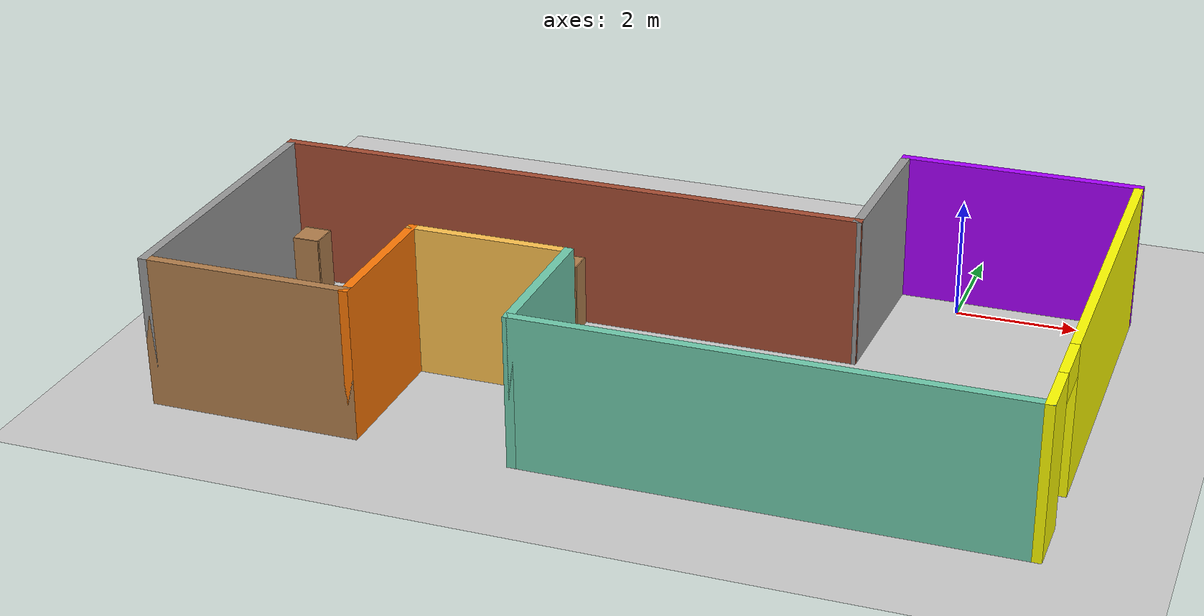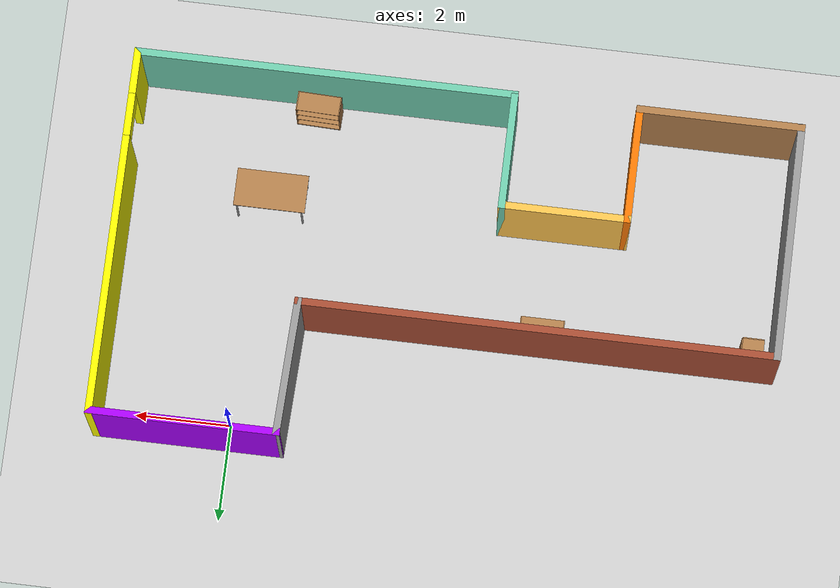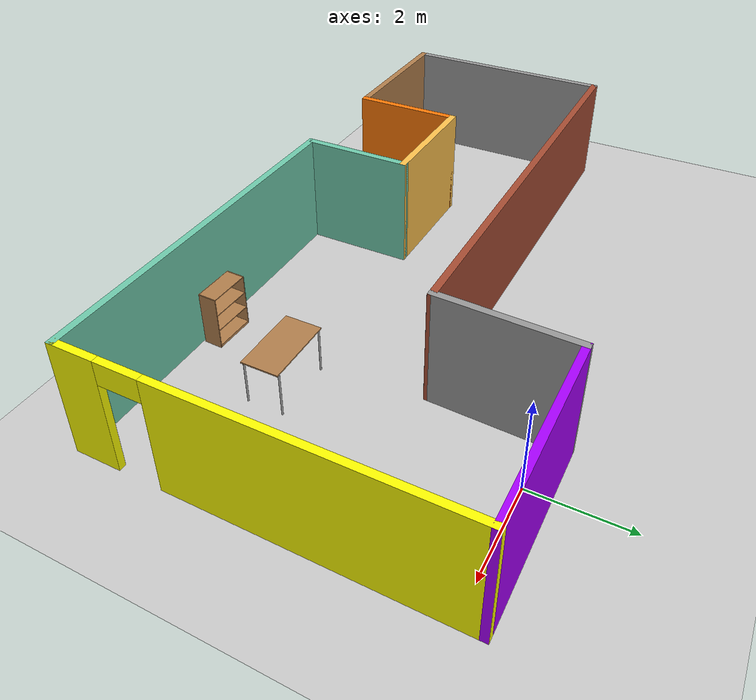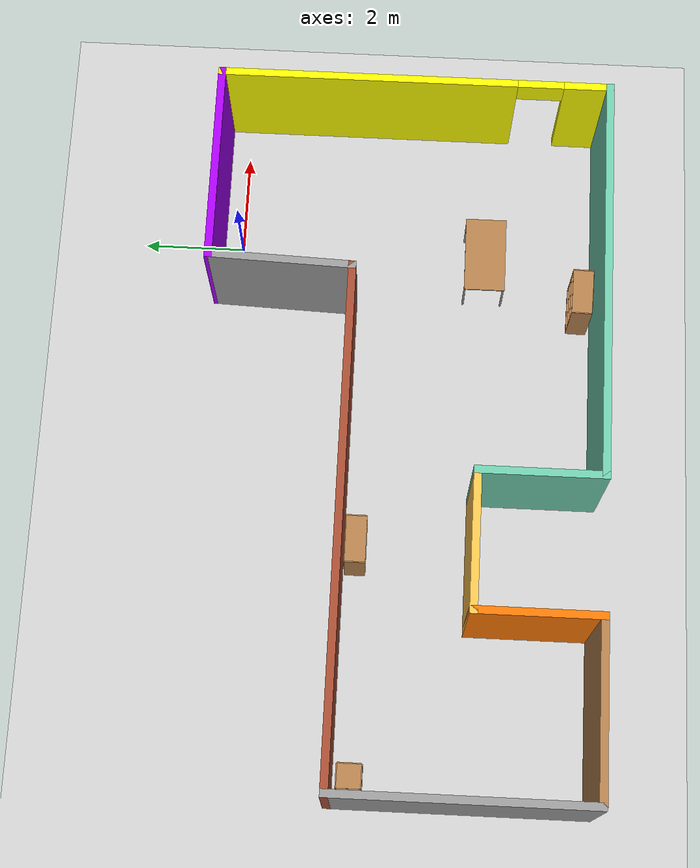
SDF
<sdf version="1.6">
 <world name="default">
  <light name="sun" type="directional">
   <pose>0 0 10 0 -0 0</pose>
   <diffuse>0.8 0.8 0.8 1</diffuse>
   <specular>0.2 0.2 0.2 1</specular>
   <attenuation>
    <range>1000</range>
    <constant>0.9</constant>
    <linear>0.01</linear>
    <quadratic>0.001</quadratic>
   </attenuation>
   <direction>-0.5 0.1 -0.9</direction>
  </light>
  <model name="ground_plane">
   <static>1</static>
   <link name="link">
    <collision name="collision">
     <geometry><plane><normal>0 0 1</normal><size>100 100</size></plane></geometry>
     <surface>
      <contact><collide_bitmask>65535</collide_bitmask></contact>
      <friction><ode><mu>100</mu><mu2>50</mu2></ode></friction>
     </surface>
    </collision>
    <visual name="visual">
     <cast_shadows>0</cast_shadows>
     <geometry><plane><normal>0 0 1</normal><size>100 100</size></plane></geometry>
     <material>
      <script><uri>file://media/materials/scripts/gazebo.material</uri><name>Gazebo/Grey</name></script>
     </material>
    </visual>
   </link>
  </model>
  <gravity>0 0 -9.8</gravity>
  <magnetic_field>6e-06 2.3e-05 -4.2e-05</magnetic_field>
  <atmosphere type="adiabatic"/>
  <physics name="default_physics" default="0" type="ode">
   <max_step_size>0.001</max_step_size>
   <real_time_factor>1</real_time_factor>
   <real_time_update_rate>1000</real_time_update_rate>
  </physics>
  <scene><ambient>0.4 0.4 0.4 1</ambient><background>0.7 0.7 0.7 1</background><shadows>1</shadows></scene>
  <spherical_coordinates>
   <surface_model>EARTH_WGS84</surface_model>
   <latitude_deg>0</latitude_deg>
   <longitude_deg>0</longitude_deg>
   <elevation>0</elevation>
   <heading_deg>0</heading_deg>
  </spherical_coordinates>
  <model name="simple_space">
   <pose>-4.15605 -3.3435 0 0 -0 0</pose>
   <link name="Wall_15">
    <collision name="Wall_15_Collision">
     <geometry><box><size>10 0.15 2.5</size></box></geometry>
     <pose>0 0 1.25 0 -0 0</pose>
    </collision>
    <visual name="Wall_15_Visual">
     <pose>0 0 1.25 0 -0 0</pose>
     <geometry><box><size>10 0.15 2.5</size></box></geometry>
     <material>
      <script><uri>file://media/materials/scripts/gazebo.material</uri><name>Gazebo/Bricks</name></script>
      <ambient>1 1 1 1</ambient>
     </material>
     <meta><layer>0</layer></meta>
    </visual>
    <pose>-1.975 1.04866 0 0 -0 3.14159</pose>
   </link>
   <link name="Wall_16">
    <collision name="Wall_16_Collision">
     <geometry><box><size>5 0.15 2.5</size></box></geometry>
     <pose>0 0 1.25 0 -0 0</pose>
    </collision>
    <visual name="Wall_16_Visual">
     <pose>0 0 1.25 0 -0 0</pose>
     <geometry><box><size>5 0.15 2.5</size></box></geometry>
     <material>
      <script><uri>file://media/materials/scripts/gazebo.material</uri><name>Gazebo/Grey</name></script>
      <ambient>1 1 1 1</ambient>
     </material>
     <meta><layer>0</layer></meta>
    </visual>
    <pose>-6.9 -1.37634 0 0 0 -1.5708</pose>
   </link>
   <link name="Wall_17">
    <collision name="Wall_17_Collision">
     <geometry><box><size>3.5 0.15 2.5</size></box></geometry>
     <pose>0 0 1.25 0 -0 0</pose>
    </collision>
    <visual name="Wall_17_Visual">
     <pose>0 0 1.25 0 -0 0</pose>
     <geometry><box><size>3.5 0.15 2.5</size></box></geometry>
     <material>
      <script><uri>file://media/materials/scripts/gazebo.material</uri><name>Gazebo/Wood</name></script>
      <ambient>1 1 1 1</ambient>
     </material>
     <meta><layer>0</layer></meta>
    </visual>
    <pose>-5.225 -3.80134 0 0 -0 0</pose>
   </link>
   <link name="Wall_18">
    <collision name="Wall_18_Collision">
     <geometry><box><size>2.5 0.15 2.5</size></box></geometry>
     <pose>0 0 1.25 0 -0 0</pose>
    </collision>
    <visual name="Wall_18_Visual">
     <pose>0 0 1.25 0 -0 0</pose>
     <geometry><box><size>2.5 0.15 2.5</size></box></geometry>
     <material>
      <script><uri>file://media/materials/scripts/gazebo.material</uri><name>Gazebo/Grey</name></script>
      <ambient>0.996078 0.47451 0.0196078 1</ambient>
     </material>
     <meta><layer>0</layer></meta>
    </visual>
    <pose>-3.55 -2.62634 0 0 -0 1.5708</pose>
   </link>
   <link name="Wall_19">
    <collision name="Wall_19_Collision">
     <geometry><box><size>2.75 0.15 2.5</size></box></geometry>
     <pose>0 0 1.25 0 -0 0</pose>
    </collision>
    <visual name="Wall_19_Visual">
     <pose>0 0 1.25 0 -0 0</pose>
     <geometry><box><size>2.75 0.15 2.5</size></box></geometry>
     <material>
      <script><uri>file://media/materials/scripts/gazebo.material</uri><name>Gazebo/Grey</name></script>
      <ambient>1 0.764706 0.305882 1</ambient>
     </material>
     <meta><layer>0</layer></meta>
    </visual>
    <pose>-2.25 -1.45134 0 0 -0 0</pose>
   </link>
   <link name="Wall_20">
    <collision name="Wall_20_Collision">
     <geometry><box><size>2.5 0.15 2.5</size></box></geometry>
     <pose>0 0 1.25 0 -0 0</pose>
    </collision>
    <visual name="Wall_20_Visual">
     <pose>0 0 1.25 0 -0 0</pose>
     <geometry><box><size>2.5 0.15 2.5</size></box></geometry>
     <material>
      <script><uri>file://media/materials/scripts/gazebo.material</uri><name>Gazebo/Grey</name></script>
      <ambient>0.435294 0.796078 0.67451 1</ambient>
     </material>
     <meta><layer>0</layer></meta>
    </visual>
    <pose>-0.95 -2.62634 0 0 0 -1.5708</pose>
   </link>
   <link name="Wall_22">
    <collision name="Wall_22_Collision">
     <geometry><box><size>8 0.15 2.5</size></box></geometry>
     <pose>0 0 1.25 0 -0 0</pose>
    </collision>
    <visual name="Wall_22_Visual">
     <pose>0 0 1.25 0 -0 0</pose>
     <geometry><box><size>8 0.15 2.5</size></box></geometry>
     <material>
      <script><uri>file://media/materials/scripts/gazebo.material</uri><name>Gazebo/Grey</name></script>
      <ambient>0.435294 0.796078 0.67451 1</ambient>
     </material>
     <meta><layer>0</layer></meta>
    </visual>
    <pose>2.975 -3.80134 0 0 -0 0</pose>
   </link>
   <link name="Wall_23">
    <pose>6.9 -0.001338 0 0 -0 1.5708</pose>
    <visual name="Wall_23_Visual_0">
     <pose>-3.38651 0 1.25 0 -0 0</pose>
     <geometry><box><size>0.976988 0.15 2.5</size></box></geometry>
     <material>
      <script><uri>file://media/materials/scripts/gazebo.material</uri><name>Gazebo/Grey</name></script>
      <ambient>1 1 0 1</ambient>
     </material>
     <meta><layer>0</layer></meta>
    </visual>
    <collision name="Wall_23_Collision_0">
     <geometry><box><size>0.976988 0.15 2.5</size></box></geometry>
     <pose>-3.38651 0 1.25 0 -0 0</pose>
    </collision>
    <visual name="Wall_23_Visual_1">
     <pose>0.938494 0 1.25 0 -0 0</pose>
     <geometry><box><size>5.87301 0.15 2.5</size></box></geometry>
     <material>
      <script><uri>file://media/materials/scripts/gazebo.material</uri><name>Gazebo/Grey</name></script>
      <ambient>1 1 0 1</ambient>
     </material>
     <meta><layer>0</layer></meta>
    </visual>
    <collision name="Wall_23_Collision_1">
     <geometry><box><size>5.87301 0.15 2.5</size></box></geometry>
     <pose>0.938494 0 1.25 0 -0 0</pose>
    </collision>
    <visual name="Wall_23_Visual_2">
     <pose>-2.44801 0 2.25 0 -0 0</pose>
     <geometry><box><size>0.9 0.15 0.5</size></box></geometry>
     <material>
      <script><uri>file://media/materials/scripts/gazebo.material</uri><name>Gazebo/Grey</name></script>
      <ambient>1 1 0 1</ambient>
     </material>
     <meta><layer>0</layer></meta>
    </visual>
    <collision name="Wall_23_Collision_2">
     <geometry><box><size>0.9 0.15 0.5</size></box></geometry>
     <pose>-2.44801 0 2.25 0 -0 0</pose>
    </collision>
   </link>
   <link name="Wall_24">
    <collision name="Wall_24_Collision">
     <geometry><box><size>4 0.15 2.5</size></box></geometry>
     <pose>0 0 1.25 0 -0 0</pose>
    </collision>
    <visual name="Wall_24_Visual">
     <pose>0 0 1.25 0 -0 0</pose>
     <geometry><box><size>4 0.15 2.5</size></box></geometry>
     <material>
      <script><uri>file://media/materials/scripts/gazebo.material</uri><name>Gazebo/Grey</name></script>
      <ambient>0.666667 0 1 1</ambient>
     </material>
     <meta><layer>0</layer></meta>
    </visual>
    <pose>4.975 3.79866 0 0 -0 3.14159</pose>
   </link>
   <link name="Wall_25">
    <collision name="Wall_25_Collision">
     <geometry><box><size>2.90182 0.15 2.5</size></box></geometry>
     <pose>0 0 1.25 0 -0 0</pose>
    </collision>
    <visual name="Wall_25_Visual">
     <pose>0 0 1.25 0 -0 0</pose>
     <geometry><box><size>2.90182 0.15 2.5</size></box></geometry>
     <material>
      <script><uri>file://media/materials/scripts/gazebo.material</uri><name>Gazebo/Grey</name></script>
      <ambient>0 0 0 1</ambient>
     </material>
     <meta><layer>0</layer></meta>
    </visual>
    <pose>3 2.42366 0 0 0 -1.60714</pose>
   </link>
   <static>1</static>
  </model>
  <model name="bookshelf">
   <static>1</static>
   <link name="link">
    <inertial><mass>1</mass></inertial>
    <collision name="back">
     <pose>0 0.005 0.6 0 -0 0</pose>
     <geometry><box><size>0.9 0.01 1.2</size></box></geometry>
    </collision>
    <visual name="visual1">
     <pose>0 0.005 0.6 0 -0 0</pose>
     <geometry><box><size>0.9 0.01 1.2</size></box></geometry>
     <material>
      <script><uri>file://media/materials/scripts/gazebo.material</uri><name>Gazebo/Wood</name></script>
     </material>
    </visual>
    <collision name="left_side">
     <pose>0.45 -0.195 0.6 0 -0 0</pose>
     <geometry><box><size>0.02 0.4 1.2</size></box></geometry>
    </collision>
    <visual name="visual2">
     <pose>0.45 -0.195 0.6 0 -0 0</pose>
     <geometry><box><size>0.02 0.4 1.2</size></box></geometry>
     <material>
      <script><uri>file://media/materials/scripts/gazebo.material</uri><name>Gazebo/Wood</name></script>
     </material>
    </visual>
    <collision name="right_side">
     <pose>-0.45 -0.195 0.6 0 -0 0</pose>
     <geometry><box><size>0.02 0.4 1.2</size></box></geometry>
    </collision>
    <visual name="visual3">
     <pose>-0.45 -0.195 0.6 0 -0 0</pose>
     <geometry><box><size>0.02 0.4 1.2</size></box></geometry>
     <material>
      <script><uri>file://media/materials/scripts/gazebo.material</uri><name>Gazebo/Wood</name></script>
     </material>
    </visual>
    <collision name="bottom">
     <pose>0 -0.195 0.03 0 -0 0</pose>
     <geometry><box><size>0.88 0.4 0.06</size></box></geometry>
    </collision>
    <visual name="visual4">
     <pose>0 -0.195 0.03 0 -0 0</pose>
     <geometry><box><size>0.88 0.4 0.06</size></box></geometry>
     <material>
      <script><uri>file://media/materials/scripts/gazebo.material</uri><name>Gazebo/Wood</name></script>
     </material>
    </visual>
    <collision name="top">
     <pose>0 -0.195 1.19 0 -0 0</pose>
     <geometry><box><size>0.88 0.4 0.02</size></box></geometry>
    </collision>
    <visual name="visual5">
     <pose>0 -0.195 1.19 0 -0 0</pose>
     <geometry><box><size>0.88 0.4 0.02</size></box></geometry>
     <material>
      <script><uri>file://media/materials/scripts/gazebo.material</uri><name>Gazebo/Wood</name></script>
     </material>
    </visual>
    <collision name="low_shelf">
     <pose>0 -0.195 0.43 0 -0 0</pose>
     <geometry><box><size>0.88 0.4 0.02</size></box></geometry>
    </collision>
    <visual name="visual6">
     <pose>0 -0.195 0.43 0 -0 0</pose>
     <geometry><box><size>0.88 0.4 0.02</size></box></geometry>
     <material>
      <script><uri>file://media/materials/scripts/gazebo.material</uri><name>Gazebo/Wood</name></script>
     </material>
    </visual>
    <collision name="high_shelf">
     <pose>0 -0.195 0.8 0 -0 0</pose>
     <geometry><box><size>0.88 0.4 0.02</size></box></geometry>
    </collision>
    <visual name="visual7">
     <pose>0 -0.195 0.8 0 -0 0</pose>
     <geometry><box><size>0.88 0.4 0.02</size></box></geometry>
     <material>
      <script><uri>file://media/materials/scripts/gazebo.material</uri><name>Gazebo/Wood</name></script>
     </material>
    </visual>
   </link>
   <pose>-1.04 -7.00663 0 0 -0 3.1102</pose>
  </model>
  <model name="table">
   <static>1</static>
   <link name="link">
    <collision name="surface">
     <pose>0 0 1 0 -0 0</pose>
     <geometry><box><size>1.5 0.8 0.03</size></box></geometry>
     <surface><friction><ode><mu>0.6</mu><mu2>0.6</mu2></ode></friction></surface>
    </collision>
    <visual name="visual1">
     <pose>0 0 1 0 -0 0</pose>
     <geometry><box><size>1.5 0.8 0.03</size></box></geometry>
     <material>
      <script><uri>file://media/materials/scripts/gazebo.material</uri><name>Gazebo/Wood</name></script>
     </material>
    </visual>
    <collision name="front_left_leg">
     <pose>0.68 0.38 0.5 0 -0 0</pose>
     <geometry><cylinder><radius>0.02</radius><length>1</length></cylinder></geometry>
    </collision>
    <visual name="front_left_leg">
     <pose>0.68 0.38 0.5 0 -0 0</pose>
     <geometry><cylinder><radius>0.02</radius><length>1</length></cylinder></geometry>
     <material>
      <script><uri>file://media/materials/scripts/gazebo.material</uri><name>Gazebo/Grey</name></script>
     </material>
    </visual>
    <collision name="front_right_leg">
     <pose>0.68 -0.38 0.5 0 -0 0</pose>
     <geometry><cylinder><radius>0.02</radius><length>1</length></cylinder></geometry>
    </collision>
    <visual name="front_right_leg">
     <pose>0.68 -0.38 0.5 0 -0 0</pose>
     <geometry><cylinder><radius>0.02</radius><length>1</length></cylinder></geometry>
     <material>
      <script><uri>file://media/materials/scripts/gazebo.material</uri><name>Gazebo/Grey</name></script>
     </material>
    </visual>
    <collision name="back_right_leg">
     <pose>-0.68 -0.38 0.5 0 -0 0</pose>
     <geometry><cylinder><radius>0.02</radius><length>1</length></cylinder></geometry>
    </collision>
    <visual name="back_right_leg">
     <pose>-0.68 -0.38 0.5 0 -0 0</pose>
     <geometry><cylinder><radius>0.02</radius><length>1</length></cylinder></geometry>
     <material>
      <script><uri>file://media/materials/scripts/gazebo.material</uri><name>Gazebo/Grey</name></script>
     </material>
    </visual>
    <collision name="back_left_leg">
     <pose>-0.68 0.38 0.5 0 -0 0</pose>
     <geometry><cylinder><radius>0.02</radius><length>1</length></cylinder></geometry>
    </collision>
    <visual name="back_left_leg">
     <pose>-0.68 0.38 0.5 0 -0 0</pose>
     <geometry><cylinder><radius>0.02</radius><length>1</length></cylinder></geometry>
     <material>
      <script><uri>file://media/materials/scripts/gazebo.material</uri><name>Gazebo/Grey</name></script>
     </material>
    </visual>
   </link>
   <pose>-0.268355 -4.88566 0 0 -0 0</pose>
  </model>
  <model name="bookshelf_0">
   <static>1</static>
   <link name="link">
    <inertial><mass>1</mass></inertial>
    <collision name="back">
     <pose>0 0.005 0.6 0 -0 0</pose>
     <geometry><box><size>0.9 0.01 1.2</size></box></geometry>
    </collision>
    <visual name="visual1">
     <pose>0 0.005 0.6 0 -0 0</pose>
     <geometry><box><size>0.9 0.01 1.2</size></box></geometry>
     <material>
      <script><uri>file://media/materials/scripts/gazebo.material</uri><name>Gazebo/Wood</name></script>
     </material>
    </visual>
    <collision name="left_side">
     <pose>0.45 -0.195 0.6 0 -0 0</pose>
     <geometry><box><size>0.02 0.4 1.2</size></box></geometry>
    </collision>
    <visual name="visual2">
     <pose>0.45 -0.195 0.6 0 -0 0</pose>
     <geometry><box><size>0.02 0.4 1.2</size></box></geometry>
     <material>
      <script><uri>file://media/materials/scripts/gazebo.material</uri><name>Gazebo/Wood</name></script>
     </material>
    </visual>
    <collision name="right_side">
     <pose>-0.45 -0.195 0.6 0 -0 0</pose>
     <geometry><box><size>0.02 0.4 1.2</size></box></geometry>
    </collision>
    <visual name="visual3">
     <pose>-0.45 -0.195 0.6 0 -0 0</pose>
     <geometry><box><size>0.02 0.4 1.2</size></box></geometry>
     <material>
      <script><uri>file://media/materials/scripts/gazebo.material</uri><name>Gazebo/Wood</name></script>
     </material>
    </visual>
    <collision name="bottom">
     <pose>0 -0.195 0.03 0 -0 0</pose>
     <geometry><box><size>0.88 0.4 0.06</size></box></geometry>
    </collision>
    <visual name="visual4">
     <pose>0 -0.195 0.03 0 -0 0</pose>
     <geometry><box><size>0.88 0.4 0.06</size></box></geometry>
     <material>
      <script><uri>file://media/materials/scripts/gazebo.material</uri><name>Gazebo/Wood</name></script>
     </material>
    </visual>
    <collision name="top">
     <pose>0 -0.195 1.19 0 -0 0</pose>
     <geometry><box><size>0.88 0.4 0.02</size></box></geometry>
    </collision>
    <visual name="visual5">
     <pose>0 -0.195 1.19 0 -0 0</pose>
     <geometry><box><size>0.88 0.4 0.02</size></box></geometry>
     <material>
      <script><uri>file://media/materials/scripts/gazebo.material</uri><name>Gazebo/Wood</name></script>
     </material>
    </visual>
    <collision name="low_shelf">
     <pose>0 -0.195 0.43 0 -0 0</pose>
     <geometry><box><size>0.88 0.4 0.02</size></box></geometry>
    </collision>
    <visual name="visual6">
     <pose>0 -0.195 0.43 0 -0 0</pose>
     <geometry><box><size>0.88 0.4 0.02</size></box></geometry>
     <material>
      <script><uri>file://media/materials/scripts/gazebo.material</uri><name>Gazebo/Wood</name></script>
     </material>
    </visual>
    <collision name="high_shelf">
     <pose>0 -0.195 0.8 0 -0 0</pose>
     <geometry><box><size>0.88 0.4 0.02</size></box></geometry>
    </collision>
    <visual name="visual7">
     <pose>0 -0.195 0.8 0 -0 0</pose>
     <geometry><box><size>0.88 0.4 0.02</size></box></geometry>
     <material>
      <script><uri>file://media/materials/scripts/gazebo.material</uri><name>Gazebo/Wood</name></script>
     </material>
    </visual>
   </link>
   <pose>-6.21314 -2.40663 0 0 -0 0</pose>
  </model>
  <model name="cabinet">
   <static>1</static>
   <link name="cabinet_bottom_plate">
    <inertial>
     <pose>0 0 -1 0 -0 0</pose>
     <inertia><ixx>2.05</ixx><ixy>0</ixy><ixz>0</ixz><iyy>2.05</iyy><iyz>0</iyz><izz>2.05</izz></inertia>
     <mass>25</mass>
    </inertial>
    <collision name="cabinet_bottom_plate_geom">
     <pose>0 0 0.01 0 -0 0</pose>
     <geometry><box><size>0.45 0.45 0.02</size></box></geometry>
    </collision>
    <visual name="cabinet_bottom_plate_geom_visual">
     <pose>0 0 0.01 0 -0 0</pose>
     <geometry><box><size>0.45 0.45 0.02</size></box></geometry>
     <material>
      <script><uri>file://media/materials/scripts/gazebo.material</uri><name>Gazebo/Wood</name></script>
     </material>
    </visual>
    <collision name="cabinet_bottom_plate_geom_cabinet_back_plate">
     <pose>0.235 0 0.51 0 -0 0</pose>
     <geometry><box><size>0.02 0.45 1.02</size></box></geometry>
    </collision>
    <visual name="cabinet_bottom_plate_geom_cabinet_back_plate_visual">
     <pose>0.235 0 0.51 0 -0 0</pose>
     <geometry><box><size>0.02 0.45 1.02</size></box></geometry>
     <material>
      <script><uri>file://media/materials/scripts/gazebo.material</uri><name>Gazebo/Wood</name></script>
     </material>
    </visual>
    <collision name="cabinet_bottom_plate_geom_cabinet_left_plate">
     <pose>0 0.235 0.51 0 -0 0</pose>
     <geometry><box><size>0.45 0.02 1.02</size></box></geometry>
    </collision>
    <visual name="cabinet_bottom_plate_geom_cabinet_left_plate_visual">
     <pose>0 0.235 0.51 0 -0 0</pose>
     <geometry><box><size>0.45 0.02 1.02</size></box></geometry>
     <material>
      <script><uri>file://media/materials/scripts/gazebo.material</uri><name>Gazebo/Wood</name></script>
     </material>
    </visual>
    <collision name="cabinet_bottom_plate_geom_cabinet_middle_plate">
     <pose>0 0 0.51 0 -0 0</pose>
     <geometry><box><size>0.45 0.45 0.02</size></box></geometry>
    </collision>
    <visual name="cabinet_bottom_plate_geom_cabinet_middle_plate_visual">
     <pose>0 0 0.51 0 -0 0</pose>
     <geometry><box><size>0.45 0.45 0.02</size></box></geometry>
     <material>
      <script><uri>file://media/materials/scripts/gazebo.material</uri><name>Gazebo/Wood</name></script>
     </material>
    </visual>
    <collision name="cabinet_bottom_plate_geom_cabinet_right_plate">
     <pose>0 -0.235 0.51 0 -0 0</pose>
     <geometry><box><size>0.45 0.02 1.02</size></box></geometry>
    </collision>
    <visual name="cabinet_bottom_plate_geom_cabinet_right_plate_visual">
     <pose>0 -0.235 0.51 0 -0 0</pose>
     <geometry><box><size>0.45 0.02 1.02</size></box></geometry>
     <material>
      <script><uri>file://media/materials/scripts/gazebo.material</uri><name>Gazebo/Wood</name></script>
     </material>
    </visual>
    <collision name="cabinet_bottom_plate_geom_cabinet_top_plate">
     <pose>0 0 1.01 0 -0 0</pose>
     <geometry><box><size>0.45 0.45 0.02</size></box></geometry>
    </collision>
    <visual name="cabinet_bottom_plate_geom_cabinet_top_plate_visual">
     <pose>0 0 1.01 0 -0 0</pose>
     <geometry><box><size>0.45 0.45 0.02</size></box></geometry>
     <material>
      <script><uri>file://media/materials/scripts/gazebo.material</uri><name>Gazebo/Wood</name></script>
     </material>
    </visual>
   </link>
   <pose>-10.6057 -2.69446 0 0 -0 0</pose>
  </model>
 </world>
</sdf>
